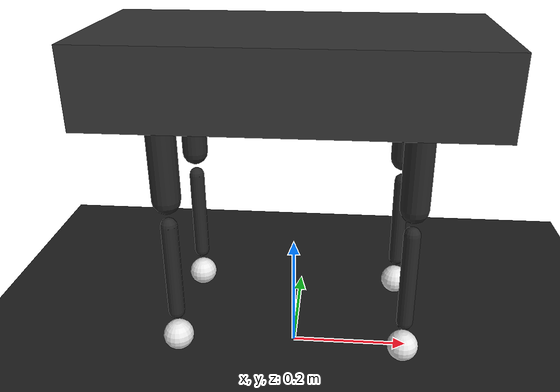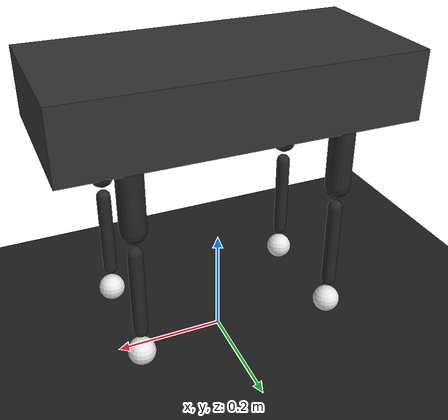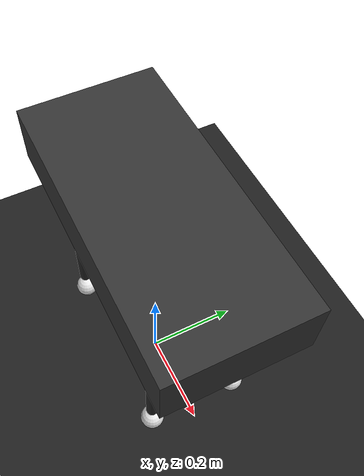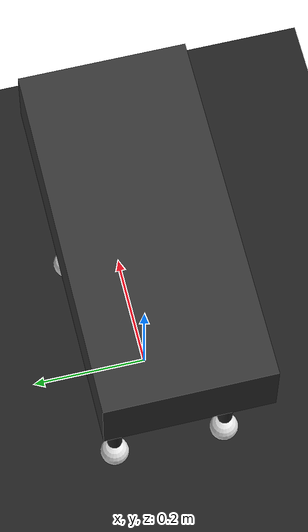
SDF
<sdf version="1.9">
 <world name="go2_world">
  <plugin filename="gz-sim-physics-system" name="gz::sim::systems::Physics">
   <engine><filename>gz-physics-dartsim-plugin</filename></engine>
  </plugin>
  <plugin filename="gz-sim-scene-broadcaster-system" name="gz::sim::systems::SceneBroadcaster"/>
  <plugin filename="gz-sim-sensors-system" name="gz::sim::systems::Sensors">
   <render_engine>ogre2</render_engine>
  </plugin>
  <plugin filename="gz-sim-imu-system" name="gz::sim::systems::Imu"/>
  <plugin filename="gz-sim-user-commands-system" name="gz::sim::systems::UserCommands"/>
  <light type="directional" name="sun">
   <pose>0 0 10 0 0 0</pose>
   <diffuse>0.9 0.9 0.9 1</diffuse>
   <specular>0.3 0.3 0.3 1</specular>
   <attenuation>
    <range>1000</range>
    <constant>0.9</constant>
    <linear>0.01</linear>
    <quadratic>0.001</quadratic>
   </attenuation>
   <direction>-0.5 0.1 -0.9</direction>
  </light>
  <light type="point" name="fill_light">
   <pose>-2 0 3 0 0 0</pose>
   <diffuse>0.3 0.3 0.4 1</diffuse>
   <specular>0.1 0.1 0.1 1</specular>
   <attenuation>
    <range>20</range>
    <constant>0.5</constant>
    <linear>0.1</linear>
    <quadratic>0.02</quadratic>
   </attenuation>
  </light>
  <model name="ground_plane">
   <static>true</static>
   <link name="link">
    <collision name="col">
     <geometry><plane><normal>0 0 1</normal><size>100 100</size></plane></geometry>
     <surface>
      <friction><ode><mu>0.9</mu><mu2>0.9</mu2></ode></friction>
      <contact><ode><min_depth>0.001</min_depth></ode></contact>
     </surface>
    </collision>
    <visual name="vis">
     <cast_shadows>false</cast_shadows>
     <geometry><plane><normal>0 0 1</normal><size>100 100</size></plane></geometry>
     <material><ambient>0.08 0.08 0.08 1</ambient><diffuse>0.12 0.12 0.12 1</diffuse></material>
    </visual>
   </link>
  </model>
  <include><uri>model://go2</uri><name>go2</name><pose>0 0 0.50 0 0 0</pose></include>
 </world>
</sdf>

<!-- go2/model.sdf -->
<sdf version="1.9">
<model name="go2">
  <self_collide>false</self_collide>
  <static>false</static>

  <!-- ═══════════════════════════════════════════════
       TRUNK
  ═══════════════════════════════════════════════ -->
  <link name="trunk">
    <pose relative_to="__model__">0 0 0 0 0 0</pose>
    <inertial>
      <mass>8.0</mass>
      <inertia>
        <ixx>0.059</ixx><ixy>0</ixy><ixz>0</ixz>
        <iyy>0.247</iyy><iyz>0</iyz>
        <izz>0.292</izz>
      </inertia>
    </inertial>
    <collision name="trunk_col">
      <geometry><box><size>0.60 0.28 0.12</size></box></geometry>
    </collision>
    <visual name="trunk_vis">
      <geometry><box><size>0.60 0.28 0.12</size></box></geometry>
      <material>
        <ambient>0.15 0.15 0.15 1</ambient>
        <diffuse>0.2 0.2 0.2 1</diffuse>
        <specular>0.4 0.4 0.4 1</specular>
      </material>
    </visual>
    <!-- IMU sensor on trunk -->
    <sensor name="imu" type="imu">
      <always_on>true</always_on>
      <update_rate>200</update_rate>
      <topic>/go2/imu</topic>
    </sensor>
  </link>

  <!-- ═══════════════════════════════════════════════
       FR LEG
  ═══════════════════════════════════════════════ -->
  <link name="FR_hip">
    <pose relative_to="__model__">0.183 -0.072 0.000 0 0 0</pose>
    <inertial><mass>0.5</mass>
      <inertia><ixx>0.0002</ixx><ixy>0</ixy><ixz>0</ixz>
               <iyy>0.0005</iyy><iyz>0</iyz><izz>0.0005</izz></inertia>
    </inertial>
    <collision name="c"><geometry><box><size>0.040 0.050 0.040</size></box></geometry></collision>
    <visual name="v"><geometry><box><size>0.040 0.050 0.040</size></box></geometry>
      <material><ambient>0.6 0.3 0.0 1</ambient><diffuse>0.8 0.4 0.0 1</diffuse></material>
    </visual>
  </link>
  <joint name="FR_hip_joint" type="revolute">
    <parent>trunk</parent><child>FR_hip</child>
    <pose relative_to="__model__">0.183 -0.047 0.000 0 0 0</pose>
    <axis><xyz expressed_in="__model__">1 0 0</xyz>
      <limit><lower>-0.80</lower><upper>0.80</upper><effort>23.7</effort><velocity>30.1</velocity></limit>
      <dynamics><damping>0.01</damping><friction>0.2</friction></dynamics>
    </axis>
  </joint>

  <link name="FR_thigh">
    <pose relative_to="__model__">0.183 -0.097 -0.100 0 0 0</pose>
    <inertial><mass>1.0</mass>
      <inertia><ixx>0.0028</ixx><ixy>0</ixy><ixz>0</ixz>
               <iyy>0.0028</iyy><iyz>0</iyz><izz>0.00025</izz></inertia>
    </inertial>
    <collision name="c"><geometry><capsule><radius>0.022</radius><length>0.156</length></capsule></geometry></collision>
    <visual name="v"><geometry><capsule><radius>0.022</radius><length>0.156</length></capsule></geometry>
      <material><ambient>0.1 0.1 0.1 1</ambient><diffuse>0.15 0.15 0.15 1</diffuse></material>
    </visual>
  </link>
  <joint name="FR_thigh_joint" type="revolute">
    <parent>FR_hip</parent><child>FR_thigh</child>
    <pose relative_to="__model__">0.183 -0.097 0.000 0 0 0</pose>
    <axis><xyz expressed_in="__model__">0 1 0</xyz>
      <limit><lower>-1.57</lower><upper>3.14</upper><effort>23.7</effort><velocity>30.1</velocity></limit>
      <dynamics><damping>0.01</damping><friction>0.2</friction></dynamics>
    </axis>
  </joint>

  <link name="FR_calf">
    <pose relative_to="__model__">0.183 -0.097 -0.300 0 0 0</pose>
    <inertial><mass>0.3</mass>
      <inertia><ixx>0.0010</ixx><ixy>0</ixy><ixz>0</ixz>
               <iyy>0.0010</iyy><iyz>0</iyz><izz>0.00003</izz></inertia>
    </inertial>
    <collision name="c"><geometry><capsule><radius>0.013</radius><length>0.156</length></capsule></geometry></collision>
    <visual name="v"><geometry><capsule><radius>0.013</radius><length>0.156</length></capsule></geometry>
      <material><ambient>0.1 0.1 0.1 1</ambient><diffuse>0.15 0.15 0.15 1</diffuse></material>
    </visual>
  </link>
  <joint name="FR_calf_joint" type="revolute">
    <parent>FR_thigh</parent><child>FR_calf</child>
    <pose relative_to="__model__">0.183 -0.097 -0.200 0 0 0</pose>
    <axis><xyz expressed_in="__model__">0 1 0</xyz>
      <limit><lower>-2.77</lower><upper>-0.66</upper><effort>35.55</effort><velocity>20.06</velocity></limit>
      <dynamics><damping>0.01</damping><friction>0.2</friction></dynamics>
    </axis>
  </joint>

  <link name="FR_foot">
    <pose relative_to="__model__">0.183 -0.097 -0.425 0 0 0</pose>
    <inertial><mass>0.06</mass>
      <inertia><ixx>0.000006</ixx><ixy>0</ixy><ixz>0</ixz>
               <iyy>0.000006</iyy><iyz>0</iyz><izz>0.000006</izz></inertia>
    </inertial>
    <collision name="c">
      <geometry><sphere><radius>0.025</radius></sphere></geometry>
      <surface><friction><ode><mu>0.8</mu><mu2>0.8</mu2></ode></friction></surface>
    </collision>
    <visual name="v"><geometry><sphere><radius>0.025</radius></sphere></geometry>
      <material><ambient>0.8 0.8 0.8 1</ambient><diffuse>0.9 0.9 0.9 1</diffuse></material>
    </visual>
  </link>
  <joint name="FR_foot_joint" type="fixed">
    <parent>FR_calf</parent><child>FR_foot</child>
    <pose relative_to="__model__">0.183 -0.097 -0.400 0 0 0</pose>
  </joint>

  <!-- ═══════════════════════════════════════════════
       FL LEG
  ═══════════════════════════════════════════════ -->
  <link name="FL_hip">
    <pose relative_to="__model__">0.183 0.072 0.000 0 0 0</pose>
    <inertial><mass>0.5</mass>
      <inertia><ixx>0.0002</ixx><ixy>0</ixy><ixz>0</ixz>
               <iyy>0.0005</iyy><iyz>0</iyz><izz>0.0005</izz></inertia>
    </inertial>
    <collision name="c"><geometry><box><size>0.040 0.050 0.040</size></box></geometry></collision>
    <visual name="v"><geometry><box><size>0.040 0.050 0.040</size></box></geometry>
      <material><ambient>0.6 0.3 0.0 1</ambient><diffuse>0.8 0.4 0.0 1</diffuse></material>
    </visual>
  </link>
  <joint name="FL_hip_joint" type="revolute">
    <parent>trunk</parent><child>FL_hip</child>
    <pose relative_to="__model__">0.183 0.047 0.000 0 0 0</pose>
    <axis><xyz expressed_in="__model__">1 0 0</xyz>
      <limit><lower>-0.80</lower><upper>0.80</upper><effort>23.7</effort><velocity>30.1</velocity></limit>
      <dynamics><damping>0.01</damping><friction>0.2</friction></dynamics>
    </axis>
  </joint>

  <link name="FL_thigh">
    <pose relative_to="__model__">0.183 0.097 -0.100 0 0 0</pose>
    <inertial><mass>1.0</mass>
      <inertia><ixx>0.0028</ixx><ixy>0</ixy><ixz>0</ixz>
               <iyy>0.0028</iyy><iyz>0</iyz><izz>0.00025</izz></inertia>
    </inertial>
    <collision name="c"><geometry><capsule><radius>0.022</radius><length>0.156</length></capsule></geometry></collision>
    <visual name="v"><geometry><capsule><radius>0.022</radius><length>0.156</length></capsule></geometry>
      <material><ambient>0.1 0.1 0.1 1</ambient><diffuse>0.15 0.15 0.15 1</diffuse></material>
    </visual>
  </link>
  <joint name="FL_thigh_joint" type="revolute">
    <parent>FL_hip</parent><child>FL_thigh</child>
    <pose relative_to="__model__">0.183 0.097 0.000 0 0 0</pose>
    <axis><xyz expressed_in="__model__">0 1 0</xyz>
      <limit><lower>-1.57</lower><upper>3.14</upper><effort>23.7</effort><velocity>30.1</velocity></limit>
      <dynamics><damping>0.01</damping><friction>0.2</friction></dynamics>
    </axis>
  </joint>

  <link name="FL_calf">
    <pose relative_to="__model__">0.183 0.097 -0.300 0 0 0</pose>
    <inertial><mass>0.3</mass>
      <inertia><ixx>0.0010</ixx><ixy>0</ixy><ixz>0</ixz>
               <iyy>0.0010</iyy><iyz>0</iyz><izz>0.00003</izz></inertia>
    </inertial>
    <collision name="c"><geometry><capsule><radius>0.013</radius><length>0.156</length></capsule></geometry></collision>
    <visual name="v"><geometry><capsule><radius>0.013</radius><length>0.156</length></capsule></geometry>
      <material><ambient>0.1 0.1 0.1 1</ambient><diffuse>0.15 0.15 0.15 1</diffuse></material>
    </visual>
  </link>
  <joint name="FL_calf_joint" type="revolute">
    <parent>FL_thigh</parent><child>FL_calf</child>
    <pose relative_to="__model__">0.183 0.097 -0.200 0 0 0</pose>
    <axis><xyz expressed_in="__model__">0 1 0</xyz>
      <limit><lower>-2.77</lower><upper>-0.66</upper><effort>35.55</effort><velocity>20.06</velocity></limit>
      <dynamics><damping>0.01</damping><friction>0.2</friction></dynamics>
    </axis>
  </joint>

  <link name="FL_foot">
    <pose relative_to="__model__">0.183 0.097 -0.425 0 0 0</pose>
    <inertial><mass>0.06</mass>
      <inertia><ixx>0.000006</ixx><ixy>0</ixy><ixz>0</ixz>
               <iyy>0.000006</iyy><iyz>0</iyz><izz>0.000006</izz></inertia>
    </inertial>
    <collision name="c">
      <geometry><sphere><radius>0.025</radius></sphere></geometry>
      <surface><friction><ode><mu>0.8</mu><mu2>0.8</mu2></ode></friction></surface>
    </collision>
    <visual name="v"><geometry><sphere><radius>0.025</radius></sphere></geometry>
      <material><ambient>0.8 0.8 0.8 1</ambient><diffuse>0.9 0.9 0.9 1</diffuse></material>
    </visual>
  </link>
  <joint name="FL_foot_joint" type="fixed">
    <parent>FL_calf</parent><child>FL_foot</child>
    <pose relative_to="__model__">0.183 0.097 -0.400 0 0 0</pose>
  </joint>

  <!-- ═══════════════════════════════════════════════
       RR LEG
  ═══════════════════════════════════════════════ -->
  <link name="RR_hip">
    <pose relative_to="__model__">-0.183 -0.072 0.000 0 0 0</pose>
    <inertial><mass>0.5</mass>
      <inertia><ixx>0.0002</ixx><ixy>0</ixy><ixz>0</ixz>
               <iyy>0.0005</iyy><iyz>0</iyz><izz>0.0005</izz></inertia>
    </inertial>
    <collision name="c"><geometry><box><size>0.040 0.050 0.040</size></box></geometry></collision>
    <visual name="v"><geometry><box><size>0.040 0.050 0.040</size></box></geometry>
      <material><ambient>0.6 0.3 0.0 1</ambient><diffuse>0.8 0.4 0.0 1</diffuse></material>
    </visual>
  </link>
  <joint name="RR_hip_joint" type="revolute">
    <parent>trunk</parent><child>RR_hip</child>
    <pose relative_to="__model__">-0.183 -0.047 0.000 0 0 0</pose>
    <axis><xyz expressed_in="__model__">1 0 0</xyz>
      <limit><lower>-0.80</lower><upper>0.80</upper><effort>23.7</effort><velocity>30.1</velocity></limit>
      <dynamics><damping>0.01</damping><friction>0.2</friction></dynamics>
    </axis>
  </joint>

  <link name="RR_thigh">
    <pose relative_to="__model__">-0.183 -0.097 -0.100 0 0 0</pose>
    <inertial><mass>1.0</mass>
      <inertia><ixx>0.0028</ixx><ixy>0</ixy><ixz>0</ixz>
               <iyy>0.0028</iyy><iyz>0</iyz><izz>0.00025</izz></inertia>
    </inertial>
    <collision name="c"><geometry><capsule><radius>0.022</radius><length>0.156</length></capsule></geometry></collision>
    <visual name="v"><geometry><capsule><radius>0.022</radius><length>0.156</length></capsule></geometry>
      <material><ambient>0.1 0.1 0.1 1</ambient><diffuse>0.15 0.15 0.15 1</diffuse></material>
    </visual>
  </link>
  <joint name="RR_thigh_joint" type="revolute">
    <parent>RR_hip</parent><child>RR_thigh</child>
    <pose relative_to="__model__">-0.183 -0.097 0.000 0 0 0</pose>
    <axis><xyz expressed_in="__model__">0 1 0</xyz>
      <limit><lower>-1.57</lower><upper>3.14</upper><effort>23.7</effort><velocity>30.1</velocity></limit>
      <dynamics><damping>0.01</damping><friction>0.2</friction></dynamics>
    </axis>
  </joint>

  <link name="RR_calf">
    <pose relative_to="__model__">-0.183 -0.097 -0.300 0 0 0</pose>
    <inertial><mass>0.3</mass>
      <inertia><ixx>0.0010</ixx><ixy>0</ixy><ixz>0</ixz>
               <iyy>0.0010</iyy><iyz>0</iyz><izz>0.00003</izz></inertia>
    </inertial>
    <collision name="c"><geometry><capsule><radius>0.013</radius><length>0.156</length></capsule></geometry></collision>
    <visual name="v"><geometry><capsule><radius>0.013</radius><length>0.156</length></capsule></geometry>
      <material><ambient>0.1 0.1 0.1 1</ambient><diffuse>0.15 0.15 0.15 1</diffuse></material>
    </visual>
  </link>
  <joint name="RR_calf_joint" type="revolute">
    <parent>RR_thigh</parent><child>RR_calf</child>
    <pose relative_to="__model__">-0.183 -0.097 -0.200 0 0 0</pose>
    <axis><xyz expressed_in="__model__">0 1 0</xyz>
      <limit><lower>-2.77</lower><upper>-0.66</upper><effort>35.55</effort><velocity>20.06</velocity></limit>
      <dynamics><damping>0.01</damping><friction>0.2</friction></dynamics>
    </axis>
  </joint>

  <link name="RR_foot">
    <pose relative_to="__model__">-0.183 -0.097 -0.425 0 0 0</pose>
    <inertial><mass>0.06</mass>
      <inertia><ixx>0.000006</ixx><ixy>0</ixy><ixz>0</ixz>
               <iyy>0.000006</iyy><iyz>0</iyz><izz>0.000006</izz></inertia>
    </inertial>
    <collision name="c">
      <geometry><sphere><radius>0.025</radius></sphere></geometry>
      <surface><friction><ode><mu>0.8</mu><mu2>0.8</mu2></ode></friction></surface>
    </collision>
    <visual name="v"><geometry><sphere><radius>0.025</radius></sphere></geometry>
      <material><ambient>0.8 0.8 0.8 1</ambient><diffuse>0.9 0.9 0.9 1</diffuse></material>
    </visual>
  </link>
  <joint name="RR_foot_joint" type="fixed">
    <parent>RR_calf</parent><child>RR_foot</child>
    <pose relative_to="__model__">-0.183 -0.097 -0.400 0 0 0</pose>
  </joint>

  <!-- ═══════════════════════════════════════════════
       RL LEG
  ═══════════════════════════════════════════════ -->
  <link name="RL_hip">
    <pose relative_to="__model__">-0.183 0.072 0.000 0 0 0</pose>
    <inertial><mass>0.5</mass>
      <inertia><ixx>0.0002</ixx><ixy>0</ixy><ixz>0</ixz>
               <iyy>0.0005</iyy><iyz>0</iyz><izz>0.0005</izz></inertia>
    </inertial>
    <collision name="c"><geometry><box><size>0.040 0.050 0.040</size></box></geometry></collision>
    <visual name="v"><geometry><box><size>0.040 0.050 0.040</size></box></geometry>
      <material><ambient>0.6 0.3 0.0 1</ambient><diffuse>0.8 0.4 0.0 1</diffuse></material>
    </visual>
  </link>
  <joint name="RL_hip_joint" type="revolute">
    <parent>trunk</parent><child>RL_hip</child>
    <pose relative_to="__model__">-0.183 0.047 0.000 0 0 0</pose>
    <axis><xyz expressed_in="__model__">1 0 0</xyz>
      <limit><lower>-0.80</lower><upper>0.80</upper><effort>23.7</effort><velocity>30.1</velocity></limit>
      <dynamics><damping>0.01</damping><friction>0.2</friction></dynamics>
    </axis>
  </joint>

  <link name="RL_thigh">
    <pose relative_to="__model__">-0.183 0.097 -0.100 0 0 0</pose>
    <inertial><mass>1.0</mass>
      <inertia><ixx>0.0028</ixx><ixy>0</ixy><ixz>0</ixz>
               <iyy>0.0028</iyy><iyz>0</iyz><izz>0.00025</izz></inertia>
    </inertial>
    <collision name="c"><geometry><capsule><radius>0.022</radius><length>0.156</length></capsule></geometry></collision>
    <visual name="v"><geometry><capsule><radius>0.022</radius><length>0.156</length></capsule></geometry>
      <material><ambient>0.1 0.1 0.1 1</ambient><diffuse>0.15 0.15 0.15 1</diffuse></material>
    </visual>
  </link>
  <joint name="RL_thigh_joint" type="revolute">
    <parent>RL_hip</parent><child>RL_thigh</child>
    <pose relative_to="__model__">-0.183 0.097 0.000 0 0 0</pose>
    <axis><xyz expressed_in="__model__">0 1 0</xyz>
      <limit><lower>-1.57</lower><upper>3.14</upper><effort>23.7</effort><velocity>30.1</velocity></limit>
      <dynamics><damping>0.01</damping><friction>0.2</friction></dynamics>
    </axis>
  </joint>

  <link name="RL_calf">
    <pose relative_to="__model__">-0.183 0.097 -0.300 0 0 0</pose>
    <inertial><mass>0.3</mass>
      <inertia><ixx>0.0010</ixx><ixy>0</ixy><ixz>0</ixz>
               <iyy>0.0010</iyy><iyz>0</iyz><izz>0.00003</izz></inertia>
    </inertial>
    <collision name="c"><geometry><capsule><radius>0.013</radius><length>0.156</length></capsule></geometry></collision>
    <visual name="v"><geometry><capsule><radius>0.013</radius><length>0.156</length></capsule></geometry>
      <material><ambient>0.1 0.1 0.1 1</ambient><diffuse>0.15 0.15 0.15 1</diffuse></material>
    </visual>
  </link>
  <joint name="RL_calf_joint" type="revolute">
    <parent>RL_thigh</parent><child>RL_calf</child>
    <pose relative_to="__model__">-0.183 0.097 -0.200 0 0 0</pose>
    <axis><xyz expressed_in="__model__">0 1 0</xyz>
      <limit><lower>-2.77</lower><upper>-0.66</upper><effort>35.55</effort><velocity>20.06</velocity></limit>
      <dynamics><damping>0.01</damping><friction>0.2</friction></dynamics>
    </axis>
  </joint>

  <link name="RL_foot">
    <pose relative_to="__model__">-0.183 0.097 -0.425 0 0 0</pose>
    <inertial><mass>0.06</mass>
      <inertia><ixx>0.000006</ixx><ixy>0</ixy><ixz>0</ixz>
               <iyy>0.000006</iyy><iyz>0</iyz><izz>0.000006</izz></inertia>
    </inertial>
    <collision name="c">
      <geometry><sphere><radius>0.025</radius></sphere></geometry>
      <surface><friction><ode><mu>0.8</mu><mu2>0.8</mu2></ode></friction></surface>
    </collision>
    <visual name="v"><geometry><sphere><radius>0.025</radius></sphere></geometry>
      <material><ambient>0.8 0.8 0.8 1</ambient><diffuse>0.9 0.9 0.9 1</diffuse></material>
    </visual>
  </link>
  <joint name="RL_foot_joint" type="fixed">
    <parent>RL_calf</parent><child>RL_foot</child>
    <pose relative_to="__model__">-0.183 0.097 -0.400 0 0 0</pose>
  </joint>

  <!-- ═══════════════════════════════════════════════
       PLUGINS
  ═══════════════════════════════════════════════ -->

  <!-- Publish joint states to gz transport: /go2/joint_states -->
  <plugin filename="gz-sim-joint-state-publisher-system"
          name="gz::sim::systems::JointStatePub">
    <topic>/go2/joint_states</topic>
    <update_rate>100</update_rate>
  </plugin>

  <!-- Body velocity control: /go2/cmd_vel (Twist) → applied to trunk -->
  <plugin filename="gz-sim-velocity-control-system"
          name="gz::sim::systems::VelocityControl">
    <topic>/go2/cmd_vel</topic>
  </plugin>

  <!-- ── 12 Joint Controllers (velocity mode) ── -->
  <!-- Each topic receives a gz.msgs.Double (rad/s velocity target) -->

  <plugin filename="gz-sim-joint-controller-system"
          name="gz::sim::systems::JointController">
    <joint_name>FR_hip_joint</joint_name>
    <topic>/go2/joint_vel/FR_hip</topic>
  </plugin>
  <plugin filename="gz-sim-joint-controller-system"
          name="gz::sim::systems::JointController">
    <joint_name>FR_thigh_joint</joint_name>
    <topic>/go2/joint_vel/FR_thigh</topic>
  </plugin>
  <plugin filename="gz-sim-joint-controller-system"
          name="gz::sim::systems::JointController">
    <joint_name>FR_calf_joint</joint_name>
    <topic>/go2/joint_vel/FR_calf</topic>
  </plugin>

  <plugin filename="gz-sim-joint-controller-system"
          name="gz::sim::systems::JointController">
    <joint_name>FL_hip_joint</joint_name>
    <topic>/go2/joint_vel/FL_hip</topic>
  </plugin>
  <plugin filename="gz-sim-joint-controller-system"
          name="gz::sim::systems::JointController">
    <joint_name>FL_thigh_joint</joint_name>
    <topic>/go2/joint_vel/FL_thigh</topic>
  </plugin>
  <plugin filename="gz-sim-joint-controller-system"
          name="gz::sim::systems::JointController">
    <joint_name>FL_calf_joint</joint_name>
    <topic>/go2/joint_vel/FL_calf</topic>
  </plugin>

  <plugin filename="gz-sim-joint-controller-system"
          name="gz::sim::systems::JointController">
    <joint_name>RR_hip_joint</joint_name>
    <topic>/go2/joint_vel/RR_hip</topic>
  </plugin>
  <plugin filename="gz-sim-joint-controller-system"
          name="gz::sim::systems::JointController">
    <joint_name>RR_thigh_joint</joint_name>
    <topic>/go2/joint_vel/RR_thigh</topic>
  </plugin>
  <plugin filename="gz-sim-joint-controller-system"
          name="gz::sim::systems::JointController">
    <joint_name>RR_calf_joint</joint_name>
    <topic>/go2/joint_vel/RR_calf</topic>
  </plugin>

  <plugin filename="gz-sim-joint-controller-system"
          name="gz::sim::systems::JointController">
    <joint_name>RL_hip_joint</joint_name>
    <topic>/go2/joint_vel/RL_hip</topic>
  </plugin>
  <plugin filename="gz-sim-joint-controller-system"
          name="gz::sim::systems::JointController">
    <joint_name>RL_thigh_joint</joint_name>
    <topic>/go2/joint_vel/RL_thigh</topic>
  </plugin>
  <plugin filename="gz-sim-joint-controller-system"
          name="gz::sim::systems::JointController">
    <joint_name>RL_calf_joint</joint_name>
    <topic>/go2/joint_vel/RL_calf</topic>
  </plugin>

</model>
</sdf>
